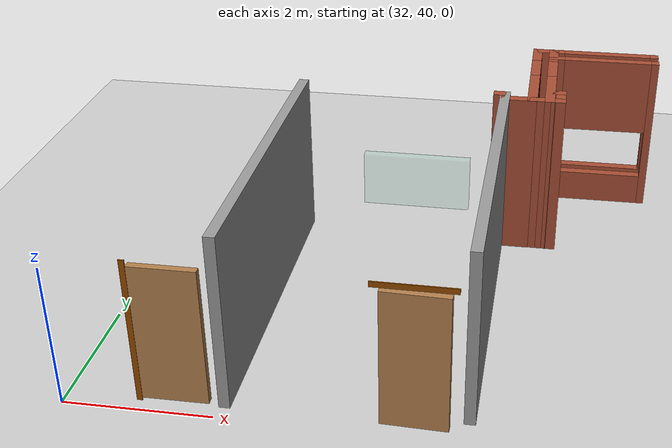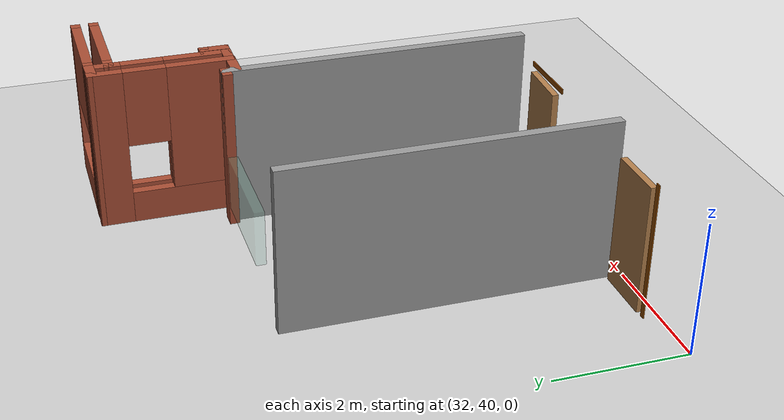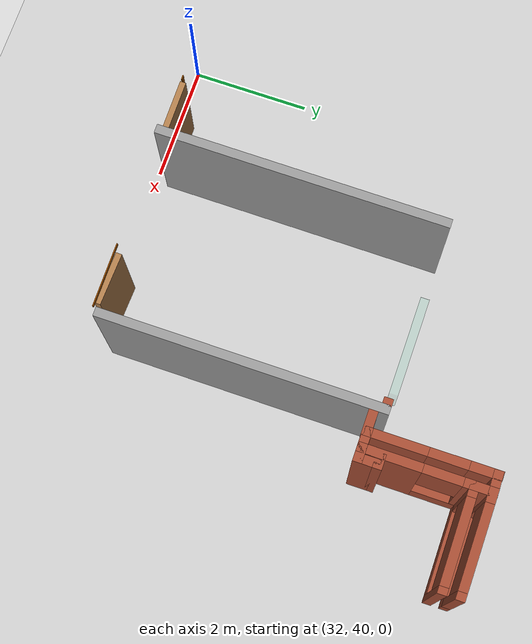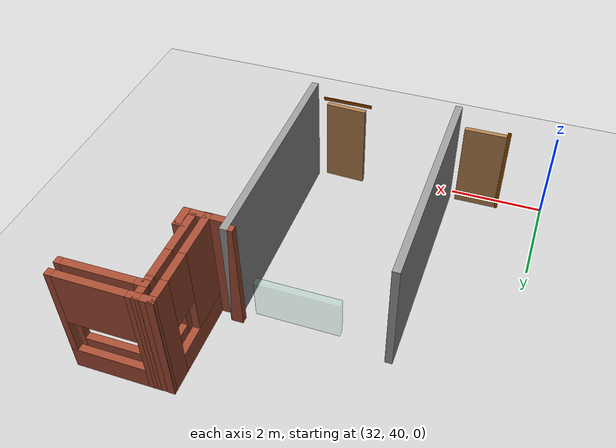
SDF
<sdf version="1.6">
 <world name="default">
  <model name="ground_plane">
   <static>1</static>
   <link name="link">
    <collision name="collision">
     <geometry><plane><normal>0 0 1</normal><size>100 100</size></plane></geometry>
     <surface><friction><ode><mu>100</mu><mu2>50</mu2></ode></friction></surface>
    </collision>
    <visual name="visual">
     <cast_shadows>0</cast_shadows>
     <geometry><plane><normal>0 0 1</normal><size>100 100</size></plane></geometry>
     <material>
      <script><uri>file://media/materials/scripts/gazebo.material</uri><name>Gazebo/Grey</name></script>
     </material>
    </visual>
   </link>
  </model>
  <model name="CVSSP">
   <pose>23.8714 24.094 0 0 -0 0</pose>
   <link name="Wall_286">
    <pose>14.7864 22.5502 0 0 0 -3.13685</pose>
    <visual name="Wall_286_Visual_0">
     <pose>-0.813568 0 1.25 0 -0 0</pose>
     <geometry><box><size>0.118345 0.15 2.5</size></box></geometry>
     <material>
      <script><uri>file://media/materials/scripts/gazebo.material</uri><name>Gazebo/Bricks</name></script>
      <ambient>1 1 1 1</ambient>
     </material>
    </visual>
    <collision name="Wall_286_Collision_0">
     <geometry><box><size>0.118345 0.15 2.5</size></box></geometry>
     <pose>-0.813568 0 1.25 0 -0 0</pose>
    </collision>
    <visual name="Wall_286_Visual_1">
     <pose>0.059173 0 0.25 0 -0 0</pose>
     <geometry><box><size>1.62714 0.15 0.5</size></box></geometry>
     <material>
      <script><uri>file://media/materials/scripts/gazebo.material</uri><name>Gazebo/Bricks</name></script>
      <ambient>1 1 1 1</ambient>
     </material>
    </visual>
    <collision name="Wall_286_Collision_1">
     <geometry><box><size>1.62714 0.15 0.5</size></box></geometry>
     <pose>0.059173 0 0.25 0 -0 0</pose>
    </collision>
    <visual name="Wall_286_Visual_2">
     <pose>0.74556 0 1.5 0 -0 0</pose>
     <geometry><box><size>0.254362 0.15 2</size></box></geometry>
     <material>
      <script><uri>file://media/materials/scripts/gazebo.material</uri><name>Gazebo/Bricks</name></script>
      <ambient>1 1 1 1</ambient>
     </material>
    </visual>
    <collision name="Wall_286_Collision_2">
     <geometry><box><size>0.254362 0.15 2</size></box></geometry>
     <pose>0.74556 0 1.5 0 -0 0</pose>
    </collision>
    <visual name="Wall_286_Visual_3">
     <pose>-0.068008 0 1.9 0 -0 0</pose>
     <geometry><box><size>1.37277 0.15 1.2</size></box></geometry>
     <material>
      <script><uri>file://media/materials/scripts/gazebo.material</uri><name>Gazebo/Bricks</name></script>
      <ambient>1 1 1 1</ambient>
     </material>
    </visual>
    <collision name="Wall_286_Collision_3">
     <geometry><box><size>1.37277 0.15 1.2</size></box></geometry>
     <pose>-0.068008 0 1.9 0 -0 0</pose>
    </collision>
   </link>
   <link name="Wall_287">
    <collision name="Wall_287_Collision">
     <geometry><box><size>0.437335 0.15 2.5</size></box></geometry>
     <pose>0 0 1.25 0 -0 0</pose>
    </collision>
    <visual name="Wall_287_Visual">
     <pose>0 0 1.25 0 -0 0</pose>
     <geometry><box><size>0.437335 0.15 2.5</size></box></geometry>
     <material>
      <script><uri>file://media/materials/scripts/gazebo.material</uri><name>Gazebo/Bricks</name></script>
      <ambient>1 1 1 1</ambient>
     </material>
    </visual>
    <pose>13.9886 22.6901 0 0 -0 1.5708</pose>
   </link>
   <link name="Wall_288">
    <pose>14.7864 22.8338 0 0 -0 0</pose>
    <visual name="Wall_288_Visual_0">
     <pose>-0.749362 0 1.25 0 -0 0</pose>
     <geometry><box><size>0.246758 0.15 2.5</size></box></geometry>
     <material>
      <script><uri>file://media/materials/scripts/gazebo.material</uri><name>Gazebo/Bricks</name></script>
      <ambient>1 1 1 1</ambient>
     </material>
    </visual>
    <collision name="Wall_288_Collision_0">
     <geometry><box><size>0.246758 0.15 2.5</size></box></geometry>
     <pose>-0.749362 0 1.25 0 -0 0</pose>
    </collision>
    <visual name="Wall_288_Visual_1">
     <pose>0.123379 0 0.25 0 -0 0</pose>
     <geometry><box><size>1.49872 0.15 0.5</size></box></geometry>
     <material>
      <script><uri>file://media/materials/scripts/gazebo.material</uri><name>Gazebo/Bricks</name></script>
      <ambient>1 1 1 1</ambient>
     </material>
    </visual>
    <collision name="Wall_288_Collision_1">
     <geometry><box><size>1.49872 0.15 0.5</size></box></geometry>
     <pose>0.123379 0 0.25 0 -0 0</pose>
    </collision>
    <visual name="Wall_288_Visual_2">
     <pose>0.806008 0 1.5 0 -0 0</pose>
     <geometry><box><size>0.133465 0.15 2</size></box></geometry>
     <material>
      <script><uri>file://media/materials/scripts/gazebo.material</uri><name>Gazebo/Bricks</name></script>
      <ambient>1 1 1 1</ambient>
     </material>
    </visual>
    <collision name="Wall_288_Collision_2">
     <geometry><box><size>0.133465 0.15 2</size></box></geometry>
     <pose>0.806008 0 1.5 0 -0 0</pose>
    </collision>
    <visual name="Wall_288_Visual_3">
     <pose>0.056646 0 1.9 0 -0 0</pose>
     <geometry><box><size>1.36526 0.15 1.2</size></box></geometry>
     <material>
      <script><uri>file://media/materials/scripts/gazebo.material</uri><name>Gazebo/Bricks</name></script>
      <ambient>1 1 1 1</ambient>
     </material>
    </visual>
    <collision name="Wall_288_Collision_3">
     <geometry><box><size>1.36526 0.15 1.2</size></box></geometry>
     <pose>0.056646 0 1.9 0 -0 0</pose>
    </collision>
   </link>
   <link name="Wall_291">
    <collision name="Wall_291_Collision">
     <geometry><box><size>0.414758 0.15 2.5</size></box></geometry>
     <pose>0 0 1.25 0 -0 0</pose>
    </collision>
    <visual name="Wall_291_Visual">
     <pose>0 0 1.25 0 -0 0</pose>
     <geometry><box><size>0.414758 0.15 2.5</size></box></geometry>
     <material>
      <script><uri>file://media/materials/scripts/gazebo.material</uri><name>Gazebo/Bricks</name></script>
      <ambient>1 1 1 1</ambient>
     </material>
    </visual>
    <pose>13.8563 22.83 0 0 0 -3.11303</pose>
   </link>
   <link name="Wall_292">
    <pose>13.7278 21.814 0 0 0 -1.56709</pose>
    <visual name="Wall_292_Visual_0">
     <pose>-0.83496 0 1.25 0 -0 0</pose>
     <geometry><box><size>0.519602 0.15 2.5</size></box></geometry>
     <material>
      <script><uri>file://media/materials/scripts/gazebo.material</uri><name>Gazebo/Bricks</name></script>
      <ambient>1 1 1 1</ambient>
     </material>
    </visual>
    <collision name="Wall_292_Collision_0">
     <geometry><box><size>0.519602 0.15 2.5</size></box></geometry>
     <pose>-0.83496 0 1.25 0 -0 0</pose>
    </collision>
    <visual name="Wall_292_Visual_1">
     <pose>0.259801 0 0.25 0 -0 0</pose>
     <geometry><box><size>1.66992 0.15 0.5</size></box></geometry>
     <material>
      <script><uri>file://media/materials/scripts/gazebo.material</uri><name>Gazebo/Bricks</name></script>
      <ambient>1 1 1 1</ambient>
     </material>
    </visual>
    <collision name="Wall_292_Collision_1">
     <geometry><box><size>1.66992 0.15 0.5</size></box></geometry>
     <pose>0.259801 0 0.25 0 -0 0</pose>
    </collision>
    <visual name="Wall_292_Visual_2">
     <pose>0.580428 0 1.5 0 -0 0</pose>
     <geometry><box><size>1.02867 0.15 2</size></box></geometry>
     <material>
      <script><uri>file://media/materials/scripts/gazebo.material</uri><name>Gazebo/Bricks</name></script>
      <ambient>1 1 1 1</ambient>
     </material>
    </visual>
    <collision name="Wall_292_Collision_2">
     <geometry><box><size>1.02867 0.15 2</size></box></geometry>
     <pose>0.580428 0 1.5 0 -0 0</pose>
    </collision>
    <visual name="Wall_292_Visual_3">
     <pose>-0.254532 0 1.9 0 -0 0</pose>
     <geometry><box><size>0.641254 0.15 1.2</size></box></geometry>
     <material>
      <script><uri>file://media/materials/scripts/gazebo.material</uri><name>Gazebo/Bricks</name></script>
      <ambient>1 1 1 1</ambient>
     </material>
    </visual>
    <collision name="Wall_292_Collision_3">
     <geometry><box><size>0.641254 0.15 1.2</size></box></geometry>
     <pose>-0.254532 0 1.9 0 -0 0</pose>
    </collision>
   </link>
   <link name="Wall_293">
    <collision name="Wall_293_Collision">
     <geometry><box><size>0.407097 0.15 2.5</size></box></geometry>
     <pose>0 0 1.25 0 -0 0</pose>
    </collision>
    <visual name="Wall_293_Visual">
     <pose>0 0 1.25 0 -0 0</pose>
     <geometry><box><size>0.407097 0.15 2.5</size></box></geometry>
     <material>
      <script><uri>file://media/materials/scripts/gazebo.material</uri><name>Gazebo/Bricks</name></script>
      <ambient>1 1 1 1</ambient>
     </material>
    </visual>
    <pose>13.8601 20.7857 0 0 0 -0.008088</pose>
   </link>
   <link name="Wall_294">
    <pose>13.9886 21.6277 0 0 -0 1.5708</pose>
    <visual name="Wall_294_Visual_0">
     <pose>-0.401803 0 1.25 0 -0 0</pose>
     <geometry><box><size>1.03275 0.15 2.5</size></box></geometry>
     <material>
      <script><uri>file://media/materials/scripts/gazebo.material</uri><name>Gazebo/Bricks</name></script>
      <ambient>1 1 1 1</ambient>
     </material>
    </visual>
    <collision name="Wall_294_Collision_0">
     <geometry><box><size>1.03275 0.15 2.5</size></box></geometry>
     <pose>-0.401803 0 1.25 0 -0 0</pose>
    </collision>
    <visual name="Wall_294_Visual_1">
     <pose>0.516374 0 0.25 0 -0 0</pose>
     <geometry><box><size>0.803605 0.15 0.5</size></box></geometry>
     <material>
      <script><uri>file://media/materials/scripts/gazebo.material</uri><name>Gazebo/Bricks</name></script>
      <ambient>1 1 1 1</ambient>
     </material>
    </visual>
    <collision name="Wall_294_Collision_1">
     <geometry><box><size>0.803605 0.15 0.5</size></box></geometry>
     <pose>0.516374 0 0.25 0 -0 0</pose>
    </collision>
    <visual name="Wall_294_Visual_2">
     <pose>0.834198 0 1.5 0 -0 0</pose>
     <geometry><box><size>0.167956 0.15 2</size></box></geometry>
     <material>
      <script><uri>file://media/materials/scripts/gazebo.material</uri><name>Gazebo/Bricks</name></script>
      <ambient>1 1 1 1</ambient>
     </material>
    </visual>
    <collision name="Wall_294_Collision_2">
     <geometry><box><size>0.167956 0.15 2</size></box></geometry>
     <pose>0.834198 0 1.5 0 -0 0</pose>
    </collision>
    <visual name="Wall_294_Visual_3">
     <pose>0.432396 0 1.9 0 -0 0</pose>
     <geometry><box><size>0.635649 0.15 1.2</size></box></geometry>
     <material>
      <script><uri>file://media/materials/scripts/gazebo.material</uri><name>Gazebo/Bricks</name></script>
      <ambient>1 1 1 1</ambient>
     </material>
    </visual>
    <collision name="Wall_294_Collision_3">
     <geometry><box><size>0.635649 0.15 1.2</size></box></geometry>
     <pose>0.432396 0 1.9 0 -0 0</pose>
    </collision>
   </link>
   <link name="Wall_296">
    <collision name="Wall_296_Collision">
     <geometry><box><size>0.30879 0.15 2.5</size></box></geometry>
     <pose>0 0 1.25 0 -0 0</pose>
    </collision>
    <visual name="Wall_296_Visual">
     <pose>0 0 1.25 0 -0 0</pose>
     <geometry><box><size>0.30879 0.15 2.5</size></box></geometry>
     <material>
      <script><uri>file://media/materials/scripts/gazebo.material</uri><name>Gazebo/Bricks</name></script>
      <ambient>1 1 1 1</ambient>
     </material>
    </visual>
    <pose>14.068 20.7846 0 0 -0 0</pose>
   </link>
   <link name="Wall_297">
    <collision name="Wall_297_Collision">
     <geometry><box><size>0.460019 0.15 2.5</size></box></geometry>
     <pose>0 0 1.25 0 -0 0</pose>
    </collision>
    <visual name="Wall_297_Visual">
     <pose>0 0 1.25 0 -0 0</pose>
     <geometry><box><size>0.460019 0.15 2.5</size></box></geometry>
     <material>
      <script><uri>file://media/materials/scripts/gazebo.material</uri><name>Gazebo/Bricks</name></script>
      <ambient>1 1 1 1</ambient>
     </material>
    </visual>
    <pose>14.1474 20.9396 0 0 -0 1.5708</pose>
   </link>
   <link name="Wall_299">
    <collision name="Wall_299_Collision">
     <geometry><box><size>0.25 0.15 2.5</size></box></geometry>
     <pose>0 0 1.25 0 -0 0</pose>
    </collision>
    <visual name="Wall_299_Visual">
     <pose>0 0 1.25 0 -0 0</pose>
     <geometry><box><size>0.25 0.15 2.5</size></box></geometry>
     <material>
      <script><uri>file://media/materials/scripts/gazebo.material</uri><name>Gazebo/Bricks</name></script>
      <ambient>1 1 1 1</ambient>
     </material>
    </visual>
    <pose>14.0974 21.0946 0 0 -0 3.14159</pose>
   </link>
   <link name="Wall_304">
    <collision name="Wall_304_Collision">
     <geometry><box><size>0.25 0.15 2.5</size></box></geometry>
     <pose>0 0 1.25 0 -0 0</pose>
    </collision>
    <visual name="Wall_304_Visual">
     <pose>0 0 1.25 0 -0 0</pose>
     <geometry><box><size>0.25 0.15 2.5</size></box></geometry>
     <material>
      <script><uri>file://media/materials/scripts/gazebo.material</uri><name>Gazebo/Bricks</name></script>
      <ambient>1 1 1 1</ambient>
     </material>
    </visual>
    <pose>13.2698 20.9408 0 0 -0 0</pose>
   </link>
   <link name="Wall_305">
    <collision name="Wall_305_Collision">
     <geometry><box><size>4.75 0.15 2.5</size></box></geometry>
     <pose>0 0 1.25 0 -0 0</pose>
    </collision>
    <visual name="Wall_305_Visual">
     <pose>0 0 1.25 0 -0 0</pose>
     <geometry><box><size>4.75 0.15 2.5</size></box></geometry>
     <material>
      <script><uri>file://media/materials/scripts/gazebo.material</uri><name>Gazebo/Grey</name></script>
      <ambient>1 1 1 1</ambient>
     </material>
    </visual>
    <pose>13.3198 18.6408 0 0 0 -1.5708</pose>
   </link>
   <link name="Wall_307">
    <collision name="Wall_307_Collision">
     <geometry><box><size>0.533753 0.15 2.5</size></box></geometry>
     <pose>0 0 1.25 0 -0 0</pose>
    </collision>
    <visual name="Wall_307_Visual">
     <pose>0 0 1.25 0 -0 0</pose>
     <geometry><box><size>0.533753 0.15 2.5</size></box></geometry>
     <material>
      <script><uri>file://media/materials/scripts/gazebo.material</uri><name>Gazebo/Bricks</name></script>
      <ambient>1 1 1 1</ambient>
     </material>
    </visual>
    <pose>13.5323 20.7794 0 0 -0 0</pose>
   </link>
   <link name="Wall_337">
    <collision name="Wall_337_Collision">
     <geometry><box><size>4.89779 0.15 2.5</size></box></geometry>
     <pose>0 0 1.25 0 -0 0</pose>
    </collision>
    <visual name="Wall_337_Visual">
     <pose>0 0 1.25 0 -0 0</pose>
     <geometry><box><size>4.89779 0.15 2.5</size></box></geometry>
     <material>
      <script><uri>file://media/materials/scripts/gazebo.material</uri><name>Gazebo/Grey</name></script>
      <ambient>0.588235 0.588235 0.588235 1</ambient>
     </material>
    </visual>
    <pose>10.2148 18.5614 0 0 -0 1.5708</pose>
   </link>
   <static>1</static>
  </model>
  <model name="window_0_clone">
   <link name="link">
    <inertial>
     <mass>0.185318</mass>
     <inertia>
      <ixx>0.0157792</ixx>
      <ixy>0</ixy>
      <ixz>0</ixz>
      <iyy>0.0398142</iyy>
      <iyz>0</iyz>
      <izz>0.0247071</izz>
     </inertia>
    </inertial>
    <visual name="visual">
     <geometry><box><size>1.66604 0.147514 0.849891</size></box></geometry>
     <material>
      <script><name>Gazebo/Grey</name><uri>file://media/materials/scripts/gazebo.material</uri></script>
      <shader type="pixel"><normal_map>__default__</normal_map></shader>
      <ambient>0.435 0.796 0.675 1</ambient>
      <diffuse>0.7 0.7 0.7 1</diffuse>
      <specular>0.01 0.01 0.01 1</specular>
      <emissive>0 0 0 1</emissive>
     </material>
     <transparency>0.8</transparency>
    </visual>
    <collision name="collision">
     <geometry><box><size>1.66604 0.147514 0.849891</size></box></geometry>
     <surface>
      <friction>
       <ode><mu>1</mu><mu2>1</mu2><fdir1>0 0 0</fdir1><slip1>0</slip1><slip2>0</slip2></ode>
       <torsional>
        <coefficient>1</coefficient>
        <patch_radius>0</patch_radius>
        <surface_radius>0</surface_radius>
        <use_patch_radius>1</use_patch_radius>
        <ode><slip>0</slip></ode>
       </torsional>
      </friction>
      <bounce><restitution_coefficient>0</restitution_coefficient><threshold>1e+06</threshold></bounce>
      <contact>
       <collide_without_contact>0</collide_without_contact>
       <collide_without_contact_bitmask>1</collide_without_contact_bitmask>
       <collide_bitmask>1</collide_bitmask>
       <ode>
        <soft_cfm>0</soft_cfm>
        <soft_erp>0.2</soft_erp>
        <kp>1e+13</kp>
        <kd>1</kd>
        <max_vel>0.01</max_vel>
        <min_depth>0</min_depth>
       </ode>
       <bullet>
        <split_impulse>1</split_impulse>
        <split_impulse_penetration_threshold>-0.01</split_impulse_penetration_threshold>
        <soft_cfm>0</soft_cfm>
        <soft_erp>0.2</soft_erp>
        <kp>1e+13</kp>
        <kd>1</kd>
       </bullet>
      </contact>
     </surface>
    </collision>
   </link>
   <static>1</static>
   <pose>35.858 45.0823 0.904256 0 -0 0</pose>
  </model>
  <model name="basic_ply_door_corrected_clone_clone">
   <link name="link">
    <pose>-0 0 1.00385 0 -0 0</pose>
    <inertial>
     <mass>0.5167</mass>
     <inertia>
      <ixx>0.00086117</ixx>
      <ixy>0</ixy>
      <ixz>0</ixz>
      <iyy>0.00086117</iyy>
      <iyz>0</iyz>
      <izz>0.00086117</izz>
     </inertia>
    </inertial>
    <gravity>0</gravity>
    <visual name="visual">
     <geometry><box><size>0.88 0.1 1.96</size></box></geometry>
     <material>
      <script><uri>file://media/materials/scripts/gazebo.material</uri><name>Gazebo/Wood</name></script>
      <shader type="pixel"><normal_map>__default__</normal_map></shader>
      <ambient>1 1 1 1</ambient>
      <diffuse>1 1 1 1</diffuse>
      <specular>0.2 0.2 0.2 1</specular>
      <emissive>0 0 0 1</emissive>
     </material>
    </visual>
    <collision name="collision">
     <geometry><box><size>0.88 0.1 1.96</size></box></geometry>
     <surface>
      <friction>
       <ode><mu>1</mu><mu2>1</mu2><fdir1>0 0 0</fdir1><slip1>0</slip1><slip2>0</slip2></ode>
       <torsional>
        <coefficient>1</coefficient>
        <patch_radius>0</patch_radius>
        <surface_radius>0.01</surface_radius>
        <use_patch_radius>0</use_patch_radius>
        <ode><slip>0</slip></ode>
       </torsional>
      </friction>
      <bounce><restitution_coefficient>0</restitution_coefficient><threshold>1e+06</threshold></bounce>
      <contact>
       <collide_without_contact>0</collide_without_contact>
       <collide_without_contact_bitmask>1</collide_without_contact_bitmask>
       <collide_bitmask>1</collide_bitmask>
       <ode>
        <soft_cfm>0</soft_cfm>
        <soft_erp>0.2</soft_erp>
        <kp>100000</kp>
        <kd>100</kd>
        <max_vel>100</max_vel>
        <min_depth>0.001</min_depth>
       </ode>
       <bullet>
        <split_impulse>1</split_impulse>
        <split_impulse_penetration_threshold>-0.01</split_impulse_penetration_threshold>
        <soft_cfm>0</soft_cfm>
        <soft_erp>0.2</soft_erp>
        <kp>100000</kp>
        <kd>100</kd>
       </bullet>
      </contact>
     </surface>
    </collision>
   </link>
   <static>1</static>
   <pose>36.5117 40.2545 -0.036806 0 0 -0.036583</pose>
  </model>
  <model name="basic_ply_door_corrected_clone_clone_clone">
   <link name="link">
    <pose>-0 0 1.00385 0 -0 0</pose>
    <inertial>
     <mass>0.5167</mass>
     <inertia>
      <ixx>0.00086117</ixx>
      <ixy>0</ixy>
      <ixz>0</ixz>
      <iyy>0.00086117</iyy>
      <iyz>0</iyz>
      <izz>0.00086117</izz>
     </inertia>
    </inertial>
    <gravity>0</gravity>
    <visual name="visual">
     <geometry><box><size>0.88 0.1 1.96</size></box></geometry>
     <material>
      <script><uri>file://media/materials/scripts/gazebo.material</uri><name>Gazebo/Wood</name></script>
      <shader type="pixel"><normal_map>__default__</normal_map></shader>
      <ambient>1 1 1 1</ambient>
      <diffuse>1 1 1 1</diffuse>
      <specular>0.2 0.2 0.2 1</specular>
      <emissive>0 0 0 1</emissive>
     </material>
    </visual>
    <collision name="collision">
     <geometry><box><size>0.88 0.1 1.96</size></box></geometry>
     <surface>
      <friction>
       <ode><mu>1</mu><mu2>1</mu2><fdir1>0 0 0</fdir1><slip1>0</slip1><slip2>0</slip2></ode>
       <torsional>
        <coefficient>1</coefficient>
        <patch_radius>0</patch_radius>
        <surface_radius>0.01</surface_radius>
        <use_patch_radius>0</use_patch_radius>
        <ode><slip>0</slip></ode>
       </torsional>
      </friction>
      <bounce><restitution_coefficient>0</restitution_coefficient><threshold>1e+06</threshold></bounce>
      <contact>
       <collide_without_contact>0</collide_without_contact>
       <collide_without_contact_bitmask>1</collide_without_contact_bitmask>
       <collide_bitmask>1</collide_bitmask>
       <ode>
        <soft_cfm>0</soft_cfm>
        <soft_erp>0.2</soft_erp>
        <kp>100000</kp>
        <kd>100</kd>
        <max_vel>100</max_vel>
        <min_depth>0.001</min_depth>
       </ode>
       <bullet>
        <split_impulse>1</split_impulse>
        <split_impulse_penetration_threshold>-0.01</split_impulse_penetration_threshold>
        <soft_cfm>0</soft_cfm>
        <soft_erp>0.2</soft_erp>
        <kp>100000</kp>
        <kd>100</kd>
       </bullet>
      </contact>
     </surface>
    </collision>
   </link>
   <static>1</static>
   <pose>33.4561 40.2405 0.027605 0 -0 0.005419</pose>
  </model>
  <model name="oak_frame_clone_3_clone_clone_4_clone">
   <link name="link">
    <inertial>
     <mass>1</mass>
     <inertia>
      <ixx>0.166667</ixx>
      <ixy>0</ixy>
      <ixz>0</ixz>
      <iyy>0.166667</iyy>
      <iyz>0</iyz>
      <izz>0.166667</izz>
     </inertia>
    </inertial>
    <visual name="visual">
     <geometry><box><size>0.018685 0.07556 2.09672</size></box></geometry>
     <material>
      <script><name>Gazebo/Grey</name><uri>file://media/materials/scripts/gazebo.material</uri></script>
      <shader type="pixel"><normal_map>__default__</normal_map></shader>
      <diffuse>0.58 0.29 0 0</diffuse>
      <ambient>0.58 0.29 0 1</ambient>
      <specular>0.01 0.01 0.01 1</specular>
      <emissive>0 0 0 1</emissive>
     </material>
    </visual>
    <collision name="collision">
     <geometry><box><size>0.018685 0.07556 2.09672</size></box></geometry>
     <surface>
      <friction>
       <ode><mu>1</mu><mu2>1</mu2><fdir1>0 0 0</fdir1><slip1>0</slip1><slip2>0</slip2></ode>
       <torsional>
        <coefficient>1</coefficient>
        <patch_radius>0</patch_radius>
        <surface_radius>0</surface_radius>
        <use_patch_radius>1</use_patch_radius>
        <ode><slip>0</slip></ode>
       </torsional>
      </friction>
      <bounce><restitution_coefficient>0</restitution_coefficient><threshold>1e+06</threshold></bounce>
      <contact>
       <collide_without_contact>0</collide_without_contact>
       <collide_without_contact_bitmask>1</collide_without_contact_bitmask>
       <collide_bitmask>1</collide_bitmask>
       <ode>
        <soft_cfm>0</soft_cfm>
        <soft_erp>0.2</soft_erp>
        <kp>1e+13</kp>
        <kd>1</kd>
        <max_vel>0.01</max_vel>
        <min_depth>0</min_depth>
       </ode>
       <bullet>
        <split_impulse>1</split_impulse>
        <split_impulse_penetration_threshold>-0.01</split_impulse_penetration_threshold>
        <soft_cfm>0</soft_cfm>
        <soft_erp>0.2</soft_erp>
        <kp>1e+13</kp>
        <kd>1</kd>
       </bullet>
      </contact>
     </surface>
    </collision>
   </link>
   <static>1</static>
   <pose>32.968 40.2148 1.03498 0 0 -1.54792</pose>
  </model>
  <model name="oak_frame_clone_3_clone_0_clone_2">
   <link name="link">
    <inertial>
     <mass>1</mass>
     <inertia>
      <ixx>0.166667</ixx>
      <ixy>0</ixy>
      <ixz>0</ixz>
      <iyy>0.166667</iyy>
      <iyz>0</iyz>
      <izz>0.166667</izz>
     </inertia>
    </inertial>
    <visual name="visual">
     <geometry><box><size>0.018685 0.07556 1.07605</size></box></geometry>
     <material>
      <script><name>Gazebo/Grey</name><uri>file://media/materials/scripts/gazebo.material</uri></script>
      <shader type="pixel"><normal_map>__default__</normal_map></shader>
      <diffuse>0.58 0.29 0 0</diffuse>
      <ambient>0.58 0.29 0 1</ambient>
      <specular>0.01 0.01 0.01 1</specular>
      <emissive>0 0 0 1</emissive>
     </material>
    </visual>
    <collision name="collision">
     <geometry><box><size>0.018685 0.07556 1.07605</size></box></geometry>
     <surface>
      <friction>
       <ode><mu>1</mu><mu2>1</mu2><fdir1>0 0 0</fdir1><slip1>0</slip1><slip2>0</slip2></ode>
       <torsional>
        <coefficient>1</coefficient>
        <patch_radius>0</patch_radius>
        <surface_radius>0</surface_radius>
        <use_patch_radius>1</use_patch_radius>
        <ode><slip>0</slip></ode>
       </torsional>
      </friction>
      <bounce><restitution_coefficient>0</restitution_coefficient><threshold>1e+06</threshold></bounce>
      <contact>
       <collide_without_contact>0</collide_without_contact>
       <collide_without_contact_bitmask>1</collide_without_contact_bitmask>
       <collide_bitmask>1</collide_bitmask>
       <ode>
        <soft_cfm>0</soft_cfm>
        <soft_erp>0.2</soft_erp>
        <kp>1e+13</kp>
        <kd>1</kd>
        <max_vel>0.01</max_vel>
        <min_depth>0</min_depth>
       </ode>
       <bullet>
        <split_impulse>1</split_impulse>
        <split_impulse_penetration_threshold>-0.01</split_impulse_penetration_threshold>
        <soft_cfm>0</soft_cfm>
        <soft_erp>0.2</soft_erp>
        <kp>1e+13</kp>
        <kd>1</kd>
       </bullet>
      </contact>
     </surface>
    </collision>
   </link>
   <static>1</static>
   <pose>36.4987 40.2152 2.04296 1.56806 -0.000643 -1.57018</pose>
  </model>
 </world>
</sdf>
